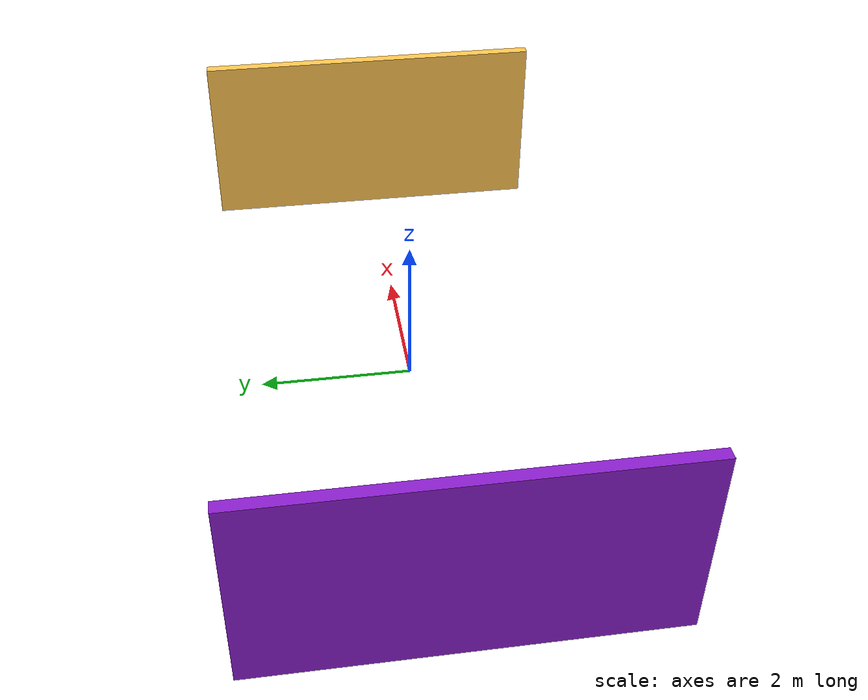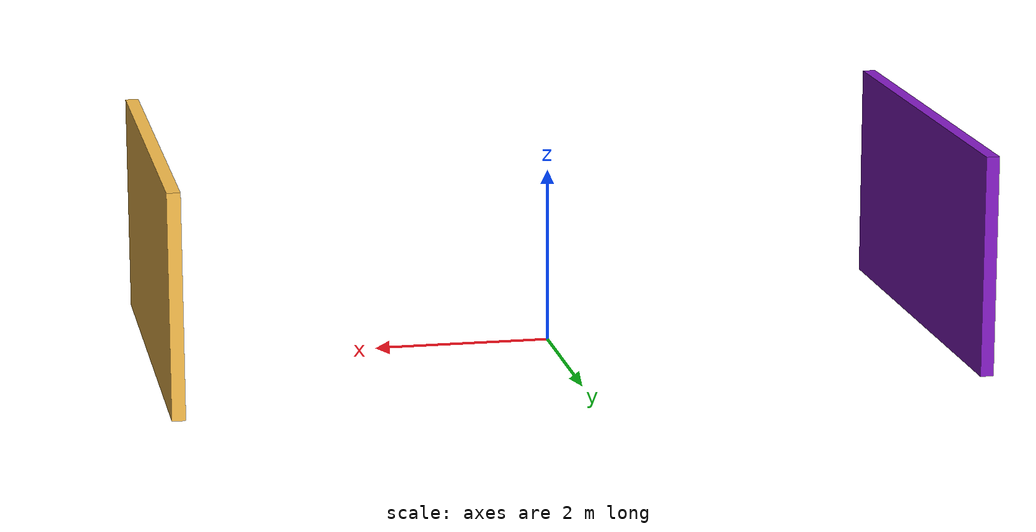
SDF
<?xml version='1.0'?>
<sdf version='1.7'>
  <model name='dumbell_walls'>
    <pose>0 0 0 0 -0 0</pose>
    <link name='Wall_0'>
      <collision name='Wall_0_Collision'>
        <geometry>
          <box>
            <size>4.95 0.15 2.5</size>
          </box>
        </geometry>
        <pose>0 0 1.25 0 -0 0</pose>
      </collision>
      <visual name='Wall_0_Visual'>
        <pose>0 0 1.25 0 -0 0</pose>
        <geometry>
          <box>
            <size>4.95 0.15 2.5</size>
          </box>
        </geometry>
        <material>
          <script>
            <uri>file://media/materials/scripts/gazebo.material</uri>
            <name>Gazebo/Grey</name>
          </script>
          <ambient>1 0.764706 0.305882 1</ambient>
        </material>
        <meta>
          <layer>0</layer>
        </meta>
      </visual>
      <pose>4.5 0 0 0 -0 1.5708</pose>
    </link>
    <link name='Wall_2'>
      <collision name='Wall_2_Collision'>
        <geometry>
          <box>
            <size>4.95 0.15 2.5</size>
          </box>
        </geometry>
        <pose>0 0 1.25 0 -0 0</pose>
      </collision>
      <visual name='Wall_2_Visual'>
        <pose>0 0 1.25 0 -0 0</pose>
        <geometry>
          <box>
            <size>4.95 0.15 2.5</size>
          </box>
        </geometry>
        <material>
          <script>
            <uri>file://media/materials/scripts/gazebo.material</uri>
            <name>Gazebo/Grey</name>
          </script>
          <ambient>0.533333 0.109804 0.792157 1</ambient>
        </material>
        <meta>
          <layer>0</layer>
        </meta>
      </visual>
      <pose>-4.5 0 0 0 -0 -1.5708</pose>
    </link>
    <static>1</static>
  </model>
</sdf>
